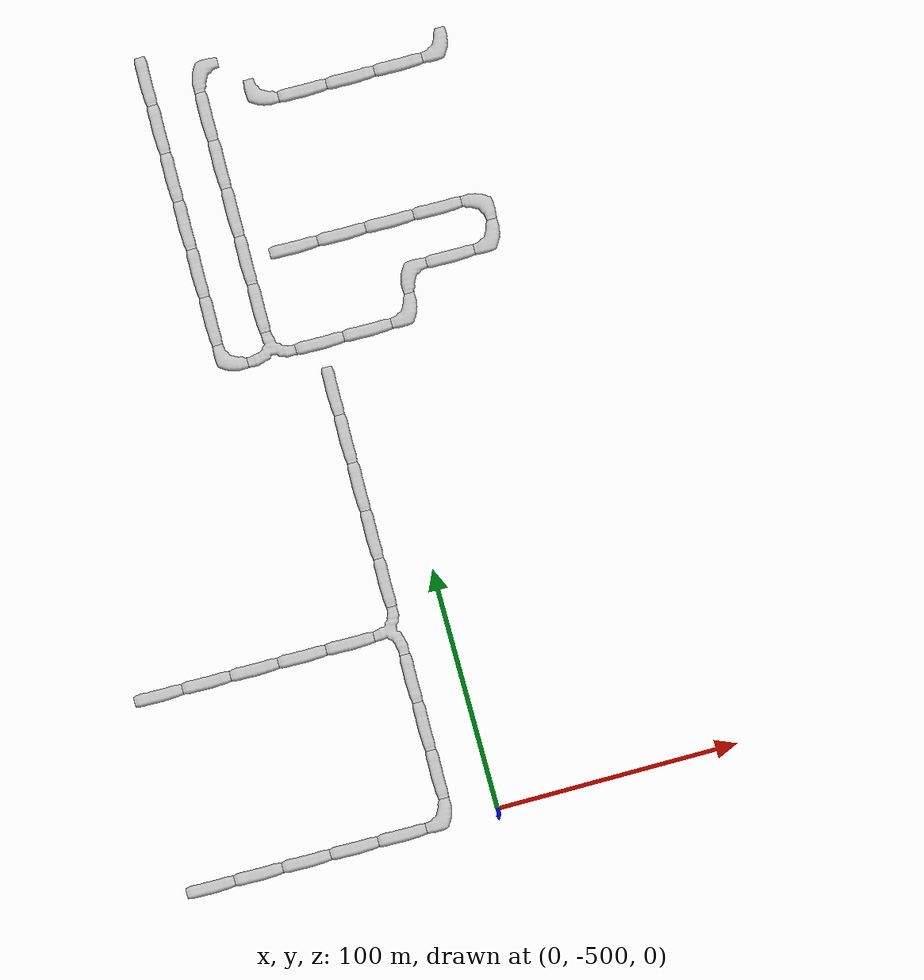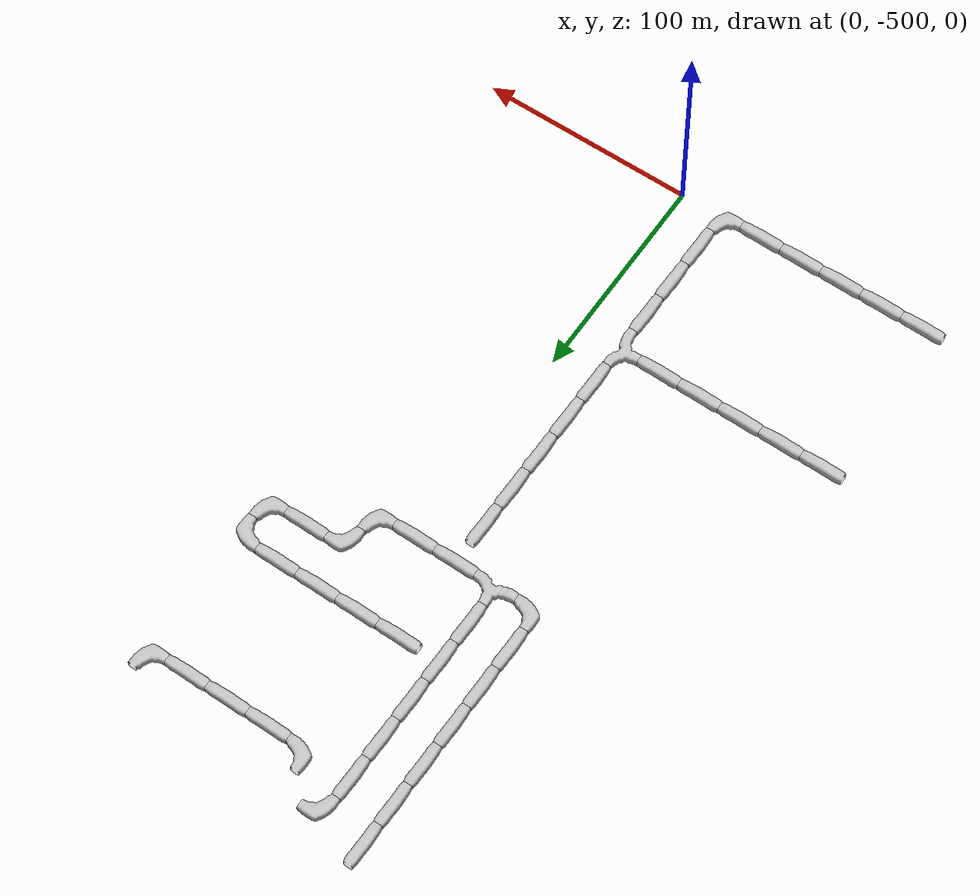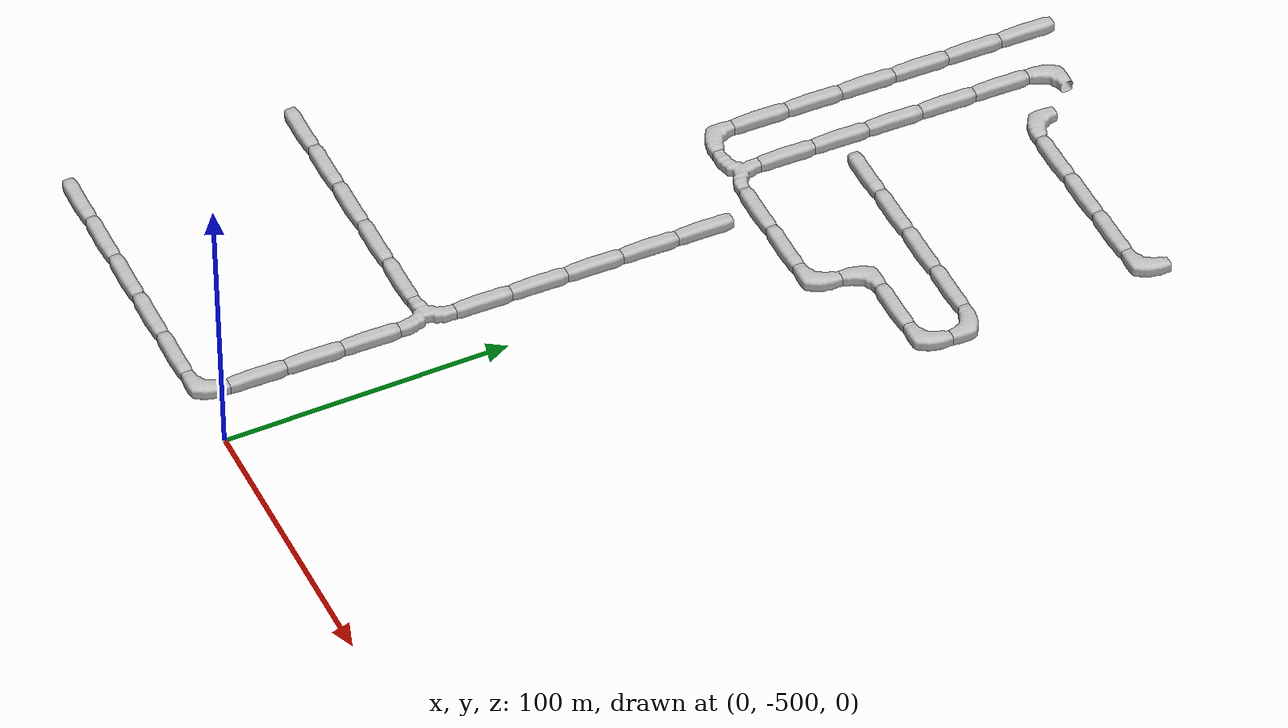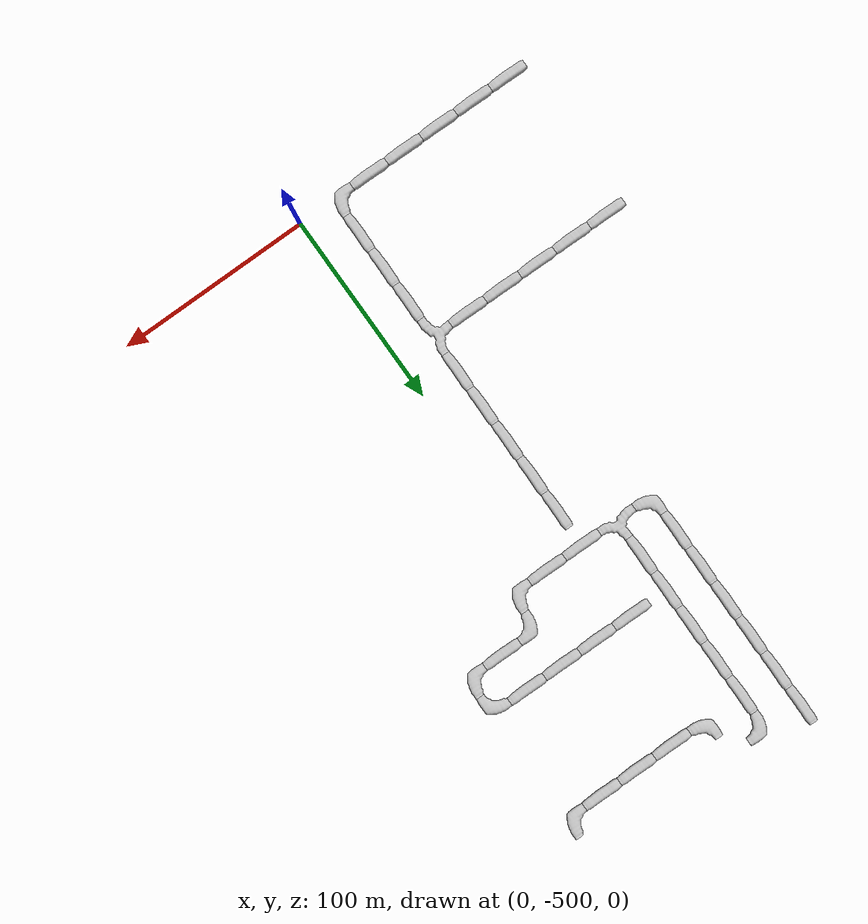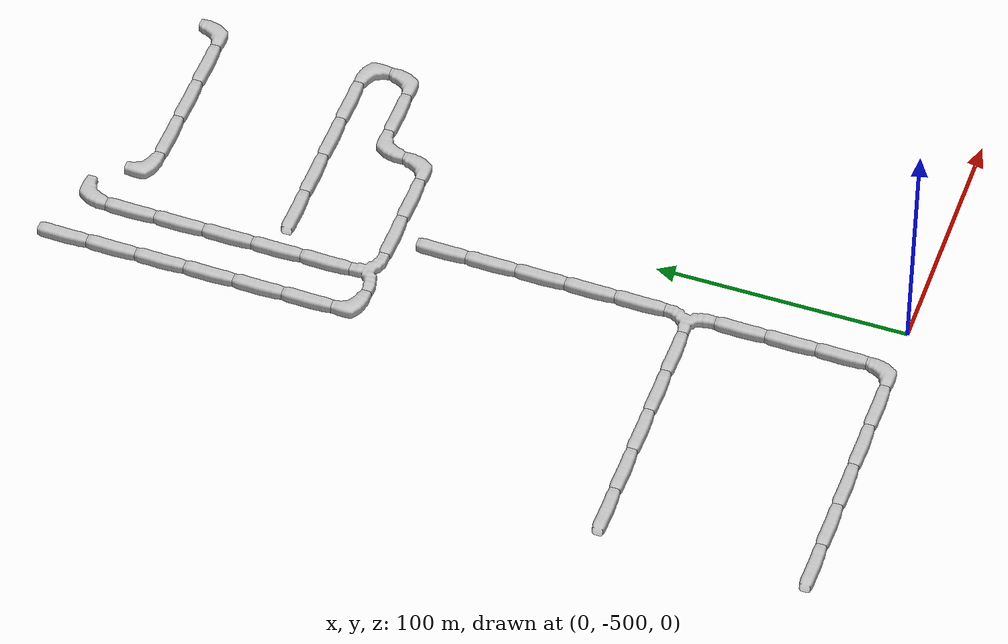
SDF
<sdf version="1.6">
 <world name="cave_16000_64">
  <include>
   <static>true</static>
   <name>cave_3_-10</name>
   <pose>60 -200 0 0 0 1.5707963267948966</pose>
   <uri>model://cave_L_20m</uri>
  </include>
  <include>
   <static>true</static>
   <name>cave_2_-10</name>
   <pose>40 -200 0 0 0 1.5707963267948966</pose>
   <uri>model://cave_straight_20m</uri>
  </include>
  <include>
   <static>true</static>
   <name>cave_1_-10</name>
   <pose>20 -200 0 0 0 1.5707963267948966</pose>
   <uri>model://cave_straight_20m</uri>
  </include>
  <include>
   <static>true</static>
   <name>cave_0_-10</name>
   <pose>0 -200 0 0 0 1.5707963267948966</pose>
   <uri>model://cave_straight_20m</uri>
  </include>
  <include>
   <static>true</static>
   <name>cave_-1_-10</name>
   <pose>-20 -200 0 0 0 0.0</pose>
   <uri>model://cave_L_20m</uri>
  </include>
  <include>
   <static>true</static>
   <name>cave_-2_-9</name>
   <pose>-40 -180 0 0 0 -1.5707963267948966</pose>
   <uri>model://cave_L_20m</uri>
  </include>
  <include>
   <static>true</static>
   <name>cave_-2_-10</name>
   <pose>-40 -200 0 0 0 0.0</pose>
   <uri>model://cave_straight_20m</uri>
  </include>
  <include>
   <static>true</static>
   <name>cave_-2_-11</name>
   <pose>-40 -220 0 0 0 0.0</pose>
   <uri>model://cave_straight_20m</uri>
  </include>
  <include>
   <static>true</static>
   <name>cave_-2_-12</name>
   <pose>-40 -240 0 0 0 0.0</pose>
   <uri>model://cave_straight_20m</uri>
  </include>
  <include>
   <static>true</static>
   <name>cave_-2_-13</name>
   <pose>-40 -260 0 0 0 0.0</pose>
   <uri>model://cave_straight_20m</uri>
  </include>
  <include>
   <static>true</static>
   <name>cave_-2_-14</name>
   <pose>-40 -280 0 0 0 0.0</pose>
   <uri>model://cave_straight_20m</uri>
  </include>
  <include>
   <static>true</static>
   <name>cave_-2_-15</name>
   <pose>-40 -300 0 0 0 0.0</pose>
   <uri>model://cave_3way_20m</uri>
  </include>
  <include>
   <static>true</static>
   <name>cave_-1_-15</name>
   <pose>-20 -300 0 0 0 1.5707963267948966</pose>
   <uri>model://cave_straight_20m</uri>
  </include>
  <include>
   <static>true</static>
   <name>cave_0_-15</name>
   <pose>0 -300 0 0 0 1.5707963267948966</pose>
   <uri>model://cave_straight_20m</uri>
  </include>
  <include>
   <static>true</static>
   <name>cave_1_-15</name>
   <pose>20 -300 0 0 0 1.5707963267948966</pose>
   <uri>model://cave_L_20m</uri>
  </include>
  <include>
   <static>true</static>
   <name>cave_1_-14</name>
   <pose>20 -280 0 0 0 -1.5707963267948966</pose>
   <uri>model://cave_L_20m</uri>
  </include>
  <include>
   <static>true</static>
   <name>cave_2_-14</name>
   <pose>40 -280 0 0 0 1.5707963267948966</pose>
   <uri>model://cave_straight_20m</uri>
  </include>
  <include>
   <static>true</static>
   <name>cave_3_-14</name>
   <pose>60 -280 0 0 0 1.5707963267948966</pose>
   <uri>model://cave_L_20m</uri>
  </include>
  <include>
   <static>true</static>
   <name>cave_3_-13</name>
   <pose>60 -260 0 0 0 3.141592653589793</pose>
   <uri>model://cave_L_20m</uri>
  </include>
  <include>
   <static>true</static>
   <name>cave_2_-13</name>
   <pose>40 -260 0 0 0 1.5707963267948966</pose>
   <uri>model://cave_straight_20m</uri>
  </include>
  <include>
   <static>true</static>
   <name>cave_1_-13</name>
   <pose>20 -260 0 0 0 1.5707963267948966</pose>
   <uri>model://cave_straight_20m</uri>
  </include>
  <include>
   <static>true</static>
   <name>cave_0_-13</name>
   <pose>0 -260 0 0 0 1.5707963267948966</pose>
   <uri>model://cave_straight_20m</uri>
  </include>
  <include>
   <static>true</static>
   <name>cave_-1_-13</name>
   <pose>-20 -260 0 0 0 1.5707963267948966</pose>
   <uri>model://cave_straight_20m</uri>
  </include>
  <include>
   <static>true</static>
   <name>cave_-3_-15</name>
   <pose>-60 -300 0 0 0 0.0</pose>
   <uri>model://cave_L_20m</uri>
  </include>
  <include>
   <static>true</static>
   <name>cave_-3_-14</name>
   <pose>-60 -280 0 0 0 0.0</pose>
   <uri>model://cave_straight_20m</uri>
  </include>
  <include>
   <static>true</static>
   <name>cave_-3_-13</name>
   <pose>-60 -260 0 0 0 0.0</pose>
   <uri>model://cave_straight_20m</uri>
  </include>
  <include>
   <static>true</static>
   <name>cave_-3_-12</name>
   <pose>-60 -240 0 0 0 0.0</pose>
   <uri>model://cave_straight_20m</uri>
  </include>
  <include>
   <static>true</static>
   <name>cave_-3_-11</name>
   <pose>-60 -220 0 0 0 0.0</pose>
   <uri>model://cave_straight_20m</uri>
  </include>
  <include>
   <static>true</static>
   <name>cave_-3_-10</name>
   <pose>-60 -200 0 0 0 0.0</pose>
   <uri>model://cave_straight_20m</uri>
  </include>
  <include>
   <static>true</static>
   <name>cave_-3_-9</name>
   <pose>-60 -180 0 0 0 0.0</pose>
   <uri>model://cave_straight_20m</uri>
  </include>
  <include>
   <static>true</static>
   <name>cave_-6_-21</name>
   <pose>-120 -420 0 0 0 1.5707963267948966</pose>
   <uri>model://cave_straight_20m</uri>
  </include>
  <include>
   <static>true</static>
   <name>cave_-5_-21</name>
   <pose>-100 -420 0 0 0 1.5707963267948966</pose>
   <uri>model://cave_straight_20m</uri>
  </include>
  <include>
   <static>true</static>
   <name>cave_-4_-21</name>
   <pose>-80 -420 0 0 0 1.5707963267948966</pose>
   <uri>model://cave_straight_20m</uri>
  </include>
  <include>
   <static>true</static>
   <name>cave_-3_-21</name>
   <pose>-60 -420 0 0 0 1.5707963267948966</pose>
   <uri>model://cave_straight_20m</uri>
  </include>
  <include>
   <static>true</static>
   <name>cave_-2_-21</name>
   <pose>-40 -420 0 0 0 1.5707963267948966</pose>
   <uri>model://cave_straight_20m</uri>
  </include>
  <include>
   <static>true</static>
   <name>cave_-1_-21</name>
   <pose>-20 -420 0 0 0 1.5707963267948966</pose>
   <uri>model://cave_3way_20m</uri>
  </include>
  <include>
   <static>true</static>
   <name>cave_-1_-22</name>
   <pose>-20 -440 0 0 0 0.0</pose>
   <uri>model://cave_straight_20m</uri>
  </include>
  <include>
   <static>true</static>
   <name>cave_-1_-23</name>
   <pose>-20 -460 0 0 0 0.0</pose>
   <uri>model://cave_straight_20m</uri>
  </include>
  <include>
   <static>true</static>
   <name>cave_-1_-24</name>
   <pose>-20 -480 0 0 0 0.0</pose>
   <uri>model://cave_straight_20m</uri>
  </include>
  <include>
   <static>true</static>
   <name>cave_-1_-25</name>
   <pose>-20 -500 0 0 0 1.5707963267948966</pose>
   <uri>model://cave_L_20m</uri>
  </include>
  <include>
   <static>true</static>
   <name>cave_-2_-25</name>
   <pose>-40 -500 0 0 0 1.5707963267948966</pose>
   <uri>model://cave_straight_20m</uri>
  </include>
  <include>
   <static>true</static>
   <name>cave_-3_-25</name>
   <pose>-60 -500 0 0 0 1.5707963267948966</pose>
   <uri>model://cave_straight_20m</uri>
  </include>
  <include>
   <static>true</static>
   <name>cave_-4_-25</name>
   <pose>-80 -500 0 0 0 1.5707963267948966</pose>
   <uri>model://cave_straight_20m</uri>
  </include>
  <include>
   <static>true</static>
   <name>cave_-5_-25</name>
   <pose>-100 -500 0 0 0 1.5707963267948966</pose>
   <uri>model://cave_straight_20m</uri>
  </include>
  <include>
   <static>true</static>
   <name>cave_-6_-25</name>
   <pose>-120 -500 0 0 0 1.5707963267948966</pose>
   <uri>model://cave_straight_20m</uri>
  </include>
  <include>
   <static>true</static>
   <name>cave_-1_-20</name>
   <pose>-20 -400 0 0 0 0.0</pose>
   <uri>model://cave_straight_20m</uri>
  </include>
  <include>
   <static>true</static>
   <name>cave_-1_-19</name>
   <pose>-20 -380 0 0 0 0.0</pose>
   <uri>model://cave_straight_20m</uri>
  </include>
  <include>
   <static>true</static>
   <name>cave_-1_-18</name>
   <pose>-20 -360 0 0 0 0.0</pose>
   <uri>model://cave_straight_20m</uri>
  </include>
  <include>
   <static>true</static>
   <name>cave_-1_-17</name>
   <pose>-20 -340 0 0 0 0.0</pose>
   <uri>model://cave_straight_20m</uri>
  </include>
  <include>
   <static>true</static>
   <name>cave_-1_-16</name>
   <pose>-20 -320 0 0 0 0.0</pose>
   <uri>model://cave_straight_20m</uri>
  </include>
 </world>
</sdf>
